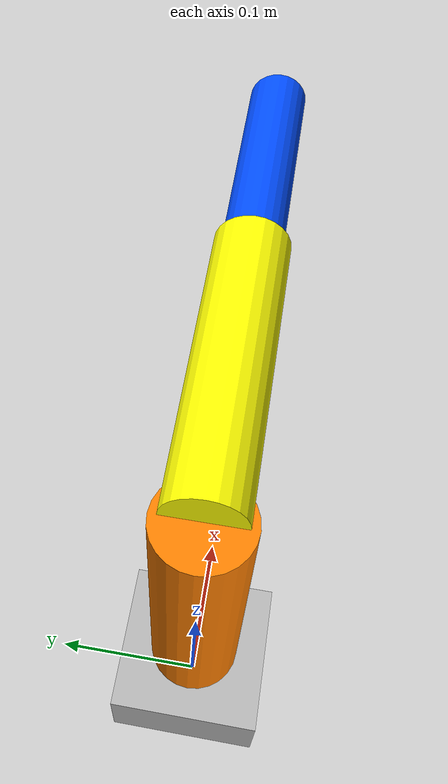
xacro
<?xml version="1.0"?>
<robot xmlns:xacro="http://www.ros.org/wiki/xacro" name="unitree_arm">
    <xacro:arg name="initial_positions_file" default="initial_positions.yaml" />

    <!-- Import unitree_arm urdf file -->
    <xacro:include filename="$(find unitree_robot_description)/urdf/hardware_driver/unitree_arm.urdf.xacro" />

    <!-- Import control_xacro -->
    <xacro:include filename="unitree_arm.ros2_control.xacro" />

    <xacro:unitree_arm_ros2_control name="FakeSystem" initial_positions_file="$(arg initial_positions_file)"/>

</robot>

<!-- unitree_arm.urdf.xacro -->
<robot xmlns:xacro="http://www.ros.org/wiki/xacro"  name="unitree_arm">

    <xacro:arg name="serial_port" default="/dev/ttyUSB0" />
    <xacro:arg name="default_kp" default="0.5" />
    <xacro:arg name="default_kd" default="0.02" />

    <xacro:include filename="../unitree_arm_description.xacro" />
    <xacro:include filename="unitree_arm_ros2_control.xacro" />

    <!--生成物理模型-->
    <xacro:unitree_arm_description />

    <!--配置硬件接口-->
    <xacro:unitree_arm_ros2_control
        name="UnitreeSystem"
        serial_port="$(arg serial_port)"
        default_kp="$(arg default_kp)"
        default_kd="$(arg default_kd)" />

</robot>

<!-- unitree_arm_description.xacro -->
<robot xmlns:xacro="http://www.ros.org/wiki/xacro">

    <xacro:include filename="inertial_macros.xacro"/>

    <xacro:property name="base_length" value="0.05"/>
    <xacro:property name="base_width" value="0.1"/>
    <xacro:property name="base_depth" value="0.1"/>

    <xacro:property name="link1_length" value="0.2"/>
    <xacro:property name="link1_radius" value="0.03"/>

    <xacro:property name="link2_length" value="0.2"/>
    <xacro:property name="link2_radius" value="0.025"/>

    <xacro:property name="link3_length" value="0.15"/>
    <xacro:property name="link3_radius" value="0.02"/>
    <xacro:property name="link3_tip_sphere_radius" value="0.01"/>

    <material name="grey">
        <color rgba="0.7 0.7 0.7 1.0"/>
    </material>

    <material name="orange">
        <color rgba="1.0 0.5 0.0 1.0"/>
    </material>

    <material name="yellow">
        <color rgba="1.0 1.0 0.0 1.0"/>
    </material>

    <material name="blue">
        <color rgba="0.0 0.3 1.0 1.0"/>
    </material>

    <xacro:macro name="unitree_arm_description">

        <link name="base_link">
            <visual>
                <origin xyz="0 0 ${base_length/2}" rpy="0 0 0"/>
                <geometry>
                    <box size="${base_width} ${base_depth} ${base_length}"/>
                </geometry>
                <material name="grey"/>
            </visual>
            <collision>
                <origin xyz="0 0 ${base_length/2}" rpy="0 0 0"/>
                <geometry>
                    <box size="${base_width} ${base_depth} ${base_length}"/>
                </geometry>
            </collision>
            <xacro:inertial_box mass="2.0" x="${base_width}" y="${base_depth}" z="${base_length}">
                <origin xyz="0 0 ${base_length/2}" rpy="0 0 0"/>
            </xacro:inertial_box>
        </link>

        <joint name="joint1" type="revolute">
            <parent link="base_link"/>
            <child link="link1"/>
            <origin xyz="0 0 ${base_length}" rpy="0 0 0"/>
            <axis xyz="0 0 1"/>
            <limit lower="-3.14" upper="3.14" effort="30.0" velocity="10.0"/>
        </joint>

        <link name="link1">
            <visual>
                <origin xyz="0 0 ${link1_length/2}" rpy="0 0 0"/>
                <geometry>
                    <cylinder radius="${link1_radius}" length="${link1_length}"/>
                </geometry>
                <material name="orange"/>
            </visual>
            <collision>
                <origin xyz="0 0 ${link1_length/2}" rpy="0 0 0"/>
                <geometry>
                    <cylinder radius="${link1_radius}" length="${link1_length}"/>
                </geometry>
            </collision>
            <xacro:inertial_cylinder mass="1.0" length="${link1_length}" radius="${link1_radius}">
                <origin xyz="0 0 ${link1_length/2}" rpy="0 0 0"/>
            </xacro:inertial_cylinder>
        </link>

        <joint name="joint2" type="revolute">
            <parent link="link1"/>
            <child link="link2"/>
            <origin xyz="0 0 ${link1_length}" rpy="0 1.57 0"/>
            <axis xyz="0 1 0"/>
            <limit lower="-2.0" upper="2.0" effort="30.0" velocity="10.0"/>
        </joint>

        <link name="link2">
            <visual>
                <origin xyz="0 0 ${link2_length/2}" rpy="0 0 0"/>
                <geometry>
                    <cylinder radius="${link2_radius}" length="${link2_length}"/>
                </geometry>
                <material name="yellow"/>
            </visual>
            <collision>
                <origin xyz="0 0 ${link2_length/2}" rpy="0 0 0"/>
                <geometry>
                    <cylinder radius="${link2_radius}" length="${link2_length}"/>
                </geometry>
            </collision>
            <xacro:inertial_cylinder mass="0.5" length="${link2_length}" radius="${link2_radius}">
                <origin xyz="0 0 ${link2_length/2}" rpy="0 0 0"/>
            </xacro:inertial_cylinder>
        </link>

        <joint name="joint3" type="revolute">
            <parent link="link2"/>
            <child link="link3"/>
            <origin xyz="0 0 ${link2_length}" rpy="0 0 0"/>
            <axis xyz="0 1 0"/>
            <limit lower="-2.0" upper="2.0" effort="30.0" velocity="10.0"/>
        </joint>

        <link name="link3">
            <visual>
                <origin xyz="0 0 ${link3_length/2}" rpy="0 0 0"/>
                <geometry>
                    <cylinder radius="${link3_radius}" length="${link3_length}"/>
                </geometry>
                <material name="blue"/>
            </visual>
            <collision>
                <origin xyz="0 0 ${link3_length/2}" rpy="0 0 0"/>
                <geometry>
                    <cylinder radius="${link3_radius}" length="${link3_length}"/>
                </geometry>
            </collision>
            <xacro:inertial_cylinder mass="0.3" length="${link3_length}" radius="${link3_radius}">
                <origin xyz="0 0 ${link3_length/2}" rpy="0 0 0"/>
            </xacro:inertial_cylinder>
        </link>

        <joint name="link3_tip_fixed_joint" type="fixed">
            <parent link="link3"/>
            <child link="link3_tip_sphere"/>
            <origin xyz="0 0 ${link3_length}" rpy="0 0 0"/>
        </joint>

        <link name="link3_tip_sphere">
            <visual>
                <origin xyz="0 0 0" rpy="0 0 0"/>
                <geometry>
                    <sphere radius="${link3_tip_sphere_radius}"/>
                </geometry>
                <material name="blue"/>
            </visual>
            <collision>
                <origin xyz="0 0 0" rpy="0 0 0"/>
                <geometry>
                    <sphere radius="${link3_tip_sphere_radius}"/>
                </geometry>
            </collision>
            <inertial>
                <origin xyz="0 0 0" rpy="0 0 0"/>
                <mass value="0.05"/>
                <inertia ixx="${(2.0/5.0) * 0.05 * link3_tip_sphere_radius * link3_tip_sphere_radius}"
                         ixy="0.0" ixz="0.0"
                         iyy="${(2.0/5.0) * 0.05 * link3_tip_sphere_radius * link3_tip_sphere_radius}"
                         iyz="0.0"
                         izz="${(2.0/5.0) * 0.05 * link3_tip_sphere_radius * link3_tip_sphere_radius}"/>
            </inertial>
        </link>

    </xacro:macro>

</robot>

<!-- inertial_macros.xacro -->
<robot xmlns:xacro="http://www.ros.org/wiki/xacro">

    <xacro:macro name="inertial_cylinder" params="mass length radius *origin">
        <inertial>
            <xacro:insert_block name="origin"/>
            <mass value="${mass}" />
            <inertia ixx="${(1/12) * mass * (3*radius*radius + length*length)}" ixy="0.0" ixz="0.0"
                     iyy="${(1/12) * mass * (3*radius*radius + length*length)}" iyz="0.0"
                     izz="${(1/2) * mass * (radius*radius)}" />
        </inertial>
    </xacro:macro>

    <xacro:macro name="inertial_box" params="mass x y z *origin">
        <inertial>
            <xacro:insert_block name="origin"/>
            <mass value="${mass}" />
            <inertia ixx="${(1/12) * mass * (y*y + z*z)}" ixy="0.0" ixz="0.0"
                     iyy="${(1/12) * mass * (x*x + z*z)}" iyz="0.0"
                     izz="${(1/12) * mass * (x*x + y*y)}" />
        </inertial>
    </xacro:macro>

</robot>
